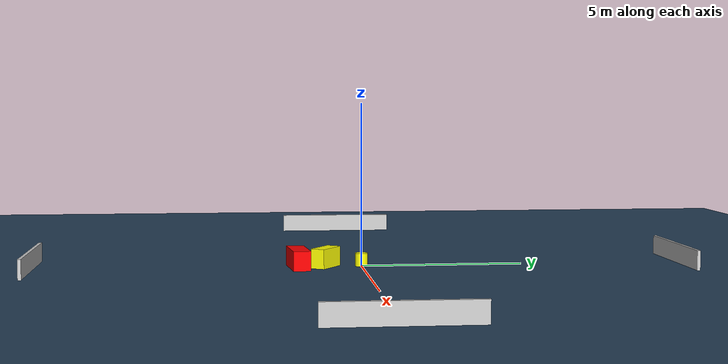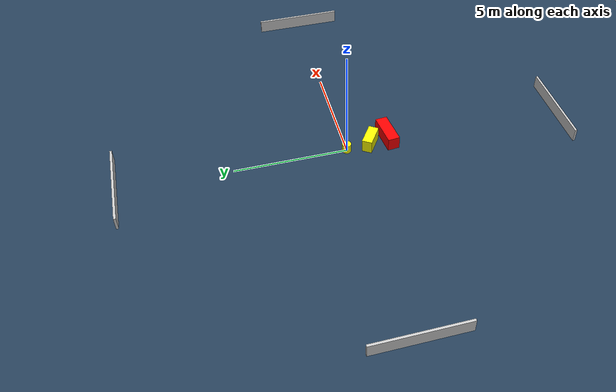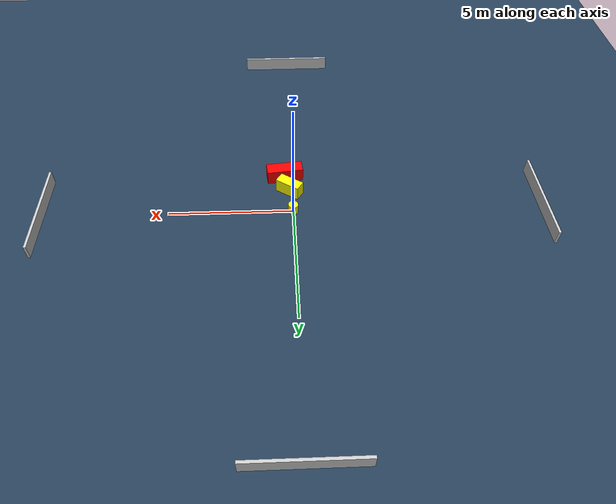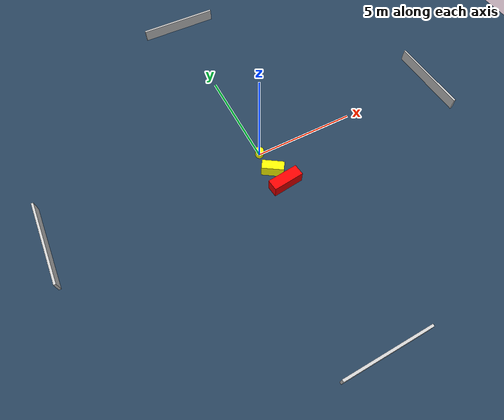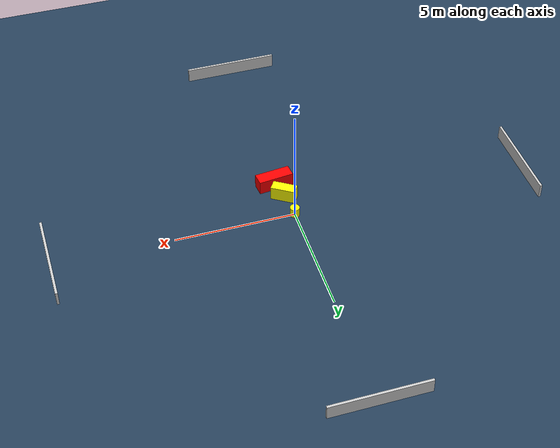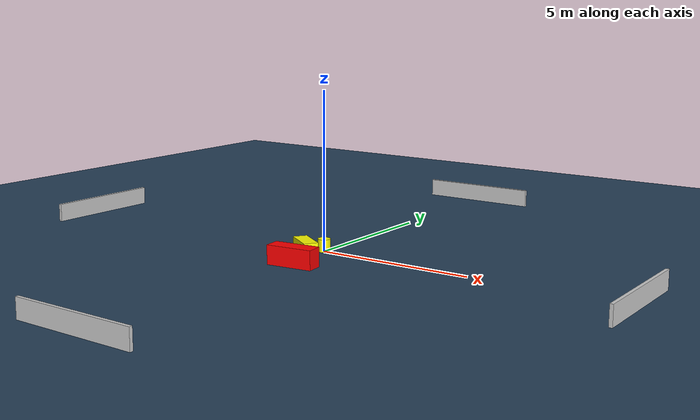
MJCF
<?xml version="1.0" ?>
<mujoco model="generated_environment">
  <option timestep="0.01" integrator="RK4" cone="elliptic"/>
  <default>
    <geom density="1"/>
  </default>
  <asset>
    <texture builtin="gradient" height="3072" name="skybox" rgb1="0.3 0.5 0.7" rgb2="0 0 0" type="skybox" width="512"/>
    <texture builtin="checker" height="300" name="groundplane" rgb1="0.2 0.3 0.4" rgb2="0.1 0.2 0.3" type="2d" width="300"/>
    <material name="groundplane" reflectance="0.2" texrepeat="5 5" texture="groundplane"/>
  </asset>
  <worldbody>
    <light dir="0 0 -1" directional="true" pos="0 0 1.5"/>
    <geom condim="3" friction="0.5 0.005 0.001" material="groundplane" name="floor" pos="0 0 0" size="0 0 0.05" type="plane"/>
    <body name="walls">
      <geom name="wall_1" condim="4" pos="-10.0 0.0 0.3" rgba="0.800000011920929 0.800000011920929 0.800000011920929 1.0" size="0.05 2.0 0.3" type="box"/>
      <geom name="wall_2" condim="4" pos="10.0 0.0 0.3" rgba="0.800000011920929 0.800000011920929 0.800000011920929 1.0" size="0.05 2.0 0.3" type="box"/>
      <geom name="wall_3" condim="4" pos="0.0 -10.0 0.3" rgba="0.800000011920929 0.800000011920929 0.800000011920929 1.0" size="2.0 0.05 0.3" type="box"/>
      <geom name="wall_4" condim="4" pos="0.0 10.0 0.3" rgba="0.800000011920929 0.800000011920929 0.800000011920929 1.0" size="2.0 0.05 0.3" type="box"/>
    </body>
    <body name="robot">
      <joint name="joint_x" type="slide" pos="0 0 0" axis="1 0 0"/>
      <joint name="joint_y" type="slide" pos="0 0 0" axis="0 1 0"/>
      <geom name="robot" type="cylinder" pos="0.0 0.0 0.2" size="0.2 0.2 0.0" mass="5.0" friction="1.0 0.005 0.0001" condim="4" rgba="1.0 1.0 0.0 1.0"/>
    </body>
    <body name="obstacle_1_movable">
      <geom name="obstacle_1_movable" condim="4" pos="0.11535368271541563 -1.1097801516987582 0.3" euler="0 0 56.50824296374789" friction="0.0 0.005 0.001" rgba="1.0 1.0 0.0 1.0" size="0.22414118534467864 0.5135112024348234 0.3" type="box" mass="0.1"/>
      <joint type="free"/>
    </body>
    <body name="obstacle_2_static">
      <geom name="obstacle_2_static" condim="4" pos="0.2967133478635647 -1.9515770430424466 0.3" euler="0 0 276.2102915525886" friction="0.0 0.005 0.001" rgba="1.0 0.0 0.0 1.0" size="0.2675380333498115 0.73885118063058 0.3" type="box"/>
    </body>
  </worldbody>
  <actuator>
    <motor name="actuator_x" joint="joint_x" gear="1" ctrlrange="-1 1"/>
    <motor name="actuator_y" joint="joint_y" gear="1" ctrlrange="-1 1"/>
  </actuator>
</mujoco>
